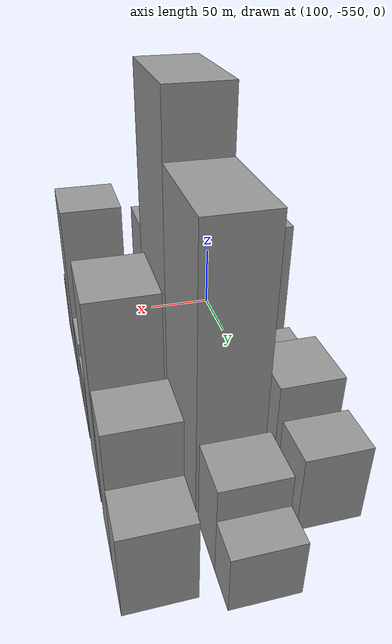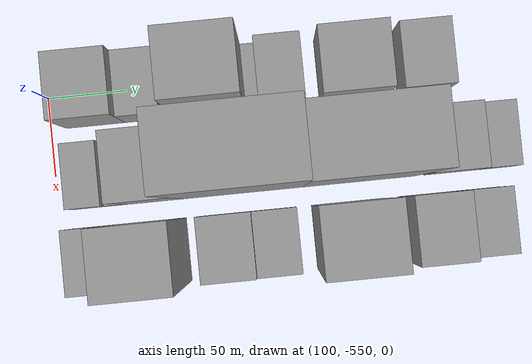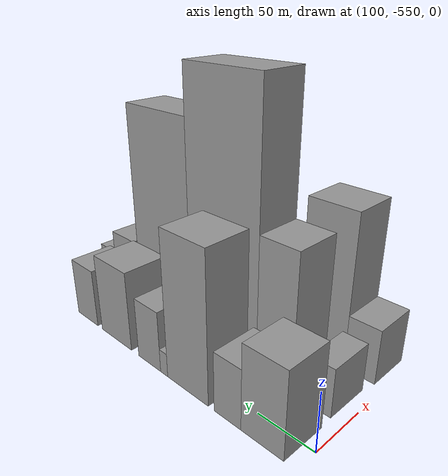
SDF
<sdf version="1.6">
 <world name="default">
  <model name="building_1">
   <static>1</static>
   <pose>100.0000 -521.2292 0 0.000000 0.000000 0.000000</pose>
   <link name="link">
    <pose>0 0 36.00 0 0 0</pose>
    <collision name="collision"><geometry><box><size>40.0000 37.5416 72.0000</size></box></geometry></collision>
    <visual name="visual">
     <cast_shadows>0</cast_shadows>
     <geometry><box><size>40.0000 37.5416 72.0000</size></box></geometry>
     <material>
      <script>
       <uri>model://grey_wall/materials/scripts</uri>
       <uri>model://grey_wall/materials/textures</uri>
       <name>vrc/grey_wall</name>
      </script>
     </material>
    </visual>
   </link>
  </model>
  <model name="building_2">
   <static>1</static>
   <pose>100.0000 -489.3952 0 0.000000 0.000000 0.000000</pose>
   <link name="link">
    <pose>0 0 25.50 0 0 0</pose>
    <collision name="collision"><geometry><box><size>40.0000 26.1263 51.0000</size></box></geometry></collision>
    <visual name="visual">
     <cast_shadows>0</cast_shadows>
     <geometry><box><size>40.0000 26.1263 51.0000</size></box></geometry>
     <material>
      <script>
       <uri>model://grey_wall/materials/scripts</uri>
       <uri>model://grey_wall/materials/textures</uri>
       <name>vrc/grey_wall</name>
      </script>
     </material>
    </visual>
   </link>
  </model>
  <model name="building_3">
   <static>1</static>
   <pose>100.0000 -447.6443 0 0.000000 0.000000 0.000000</pose>
   <link name="link">
    <pose>0 0 63.00 0 0 0</pose>
    <collision name="collision"><geometry><box><size>40.0000 45.3757 126.0000</size></box></geometry></collision>
    <visual name="visual">
     <cast_shadows>0</cast_shadows>
     <geometry><box><size>40.0000 45.3757 126.0000</size></box></geometry>
     <material>
      <script>
       <uri>model://grey_wall/materials/scripts</uri>
       <uri>model://grey_wall/materials/textures</uri>
       <name>vrc/grey_wall</name>
      </script>
     </material>
    </visual>
   </link>
  </model>
  <model name="building_4">
   <static>1</static>
   <pose>100.0000 -420.6477 0 0.000000 0.000000 0.000000</pose>
   <link name="link">
    <pose>0 0 10.50 0 0 0</pose>
    <collision name="collision"><geometry><box><size>40.0000 8.6174 21.0000</size></box></geometry></collision>
    <visual name="visual">
     <cast_shadows>0</cast_shadows>
     <geometry><box><size>40.0000 8.6174 21.0000</size></box></geometry>
     <material>
      <script>
       <uri>model://grey_wall/materials/scripts</uri>
       <uri>model://grey_wall/materials/textures</uri>
       <name>vrc/grey_wall</name>
      </script>
     </material>
    </visual>
   </link>
  </model>
  <model name="building_5">
   <static>1</static>
   <pose>100.0000 -402.2791 0 0.000000 0.000000 0.000000</pose>
   <link name="link">
    <pose>0 0 27.00 0 0 0</pose>
    <collision name="collision"><geometry><box><size>40.0000 28.1198 54.0000</size></box></geometry></collision>
    <visual name="visual">
     <cast_shadows>0</cast_shadows>
     <geometry><box><size>40.0000 28.1198 54.0000</size></box></geometry>
     <material>
      <script>
       <uri>model://grey_wall/materials/scripts</uri>
       <uri>model://grey_wall/materials/textures</uri>
       <name>vrc/grey_wall</name>
      </script>
     </material>
    </visual>
   </link>
  </model>
  <model name="building_6">
   <static>1</static>
   <pose>100.0000 -356.8882 0 0.000000 0.000000 0.000000</pose>
   <link name="link">
    <pose>0 0 36.00 0 0 0</pose>
    <collision name="collision"><geometry><box><size>40.0000 42.6621 72.0000</size></box></geometry></collision>
    <visual name="visual">
     <cast_shadows>0</cast_shadows>
     <geometry><box><size>40.0000 42.6621 72.0000</size></box></geometry>
     <material>
      <script>
       <uri>model://grey_wall/materials/scripts</uri>
       <uri>model://grey_wall/materials/textures</uri>
       <name>vrc/grey_wall</name>
      </script>
     </material>
    </visual>
   </link>
  </model>
  <model name="building_7">
   <static>1</static>
   <pose>100.0000 -312.8669 0 0.000000 0.000000 0.000000</pose>
   <link name="link">
    <pose>0 0 27.00 0 0 0</pose>
    <collision name="collision"><geometry><box><size>40.0000 31.3804 54.0000</size></box></geometry></collision>
    <visual name="visual">
     <cast_shadows>0</cast_shadows>
     <geometry><box><size>40.0000 31.3804 54.0000</size></box></geometry>
     <material>
      <script>
       <uri>model://grey_wall/materials/scripts</uri>
       <uri>model://grey_wall/materials/textures</uri>
       <name>vrc/grey_wall</name>
      </script>
     </material>
    </visual>
   </link>
  </model>
  <model name="building_31">
   <static>1</static>
   <pose>152.0000 -528.1778 0 0.000000 0.000000 0.000000</pose>
   <link name="link">
    <pose>0 0 21.00 0 0 0</pose>
    <collision name="collision"><geometry><box><size>40.0000 21.6443 42.0000</size></box></geometry></collision>
    <visual name="visual">
     <cast_shadows>0</cast_shadows>
     <geometry><box><size>40.0000 21.6443 42.0000</size></box></geometry>
     <material>
      <script>
       <uri>model://grey_wall/materials/scripts</uri>
       <uri>model://grey_wall/materials/textures</uri>
       <name>vrc/grey_wall</name>
      </script>
     </material>
    </visual>
   </link>
  </model>
  <model name="building_32">
   <static>1</static>
   <pose>152.0000 -510.8541 0 0.000000 0.000000 0.000000</pose>
   <link name="link">
    <pose>0 0 13.50 0 0 0</pose>
    <collision name="collision"><geometry><box><size>40.0000 13.0031 27.0000</size></box></geometry></collision>
    <visual name="visual">
     <cast_shadows>0</cast_shadows>
     <geometry><box><size>40.0000 13.0031 27.0000</size></box></geometry>
     <material>
      <script>
       <uri>model://grey_wall/materials/scripts</uri>
       <uri>model://grey_wall/materials/textures</uri>
       <name>vrc/grey_wall</name>
      </script>
     </material>
    </visual>
   </link>
  </model>
  <model name="building_33">
   <static>1</static>
   <pose>152.0000 -486.6505 0 0.000000 0.000000 0.000000</pose>
   <link name="link">
    <pose>0 0 58.50 0 0 0</pose>
    <collision name="collision"><geometry><box><size>40.0000 35.4040 117.0000</size></box></geometry></collision>
    <visual name="visual">
     <cast_shadows>0</cast_shadows>
     <geometry><box><size>40.0000 35.4040 117.0000</size></box></geometry>
     <material>
      <script>
       <uri>model://grey_wall/materials/scripts</uri>
       <uri>model://grey_wall/materials/textures</uri>
       <name>vrc/grey_wall</name>
      </script>
     </material>
    </visual>
   </link>
  </model>
  <model name="building_34">
   <static>1</static>
   <pose>152.0000 -431.5255 0 0.000000 0.000000 0.000000</pose>
   <link name="link">
    <pose>0 0 112.50 0 0 0</pose>
    <collision name="collision"><geometry><box><size>40.0000 74.8459 225.0000</size></box></geometry></collision>
    <visual name="visual">
     <cast_shadows>0</cast_shadows>
     <geometry><box><size>40.0000 74.8459 225.0000</size></box></geometry>
     <material>
      <script>
       <uri>model://grey_wall/materials/scripts</uri>
       <uri>model://grey_wall/materials/textures</uri>
       <name>vrc/grey_wall</name>
      </script>
     </material>
    </visual>
   </link>
  </model>
  <model name="building_35">
   <static>1</static>
   <pose>152.0000 -358.5160 0 0.000000 0.000000 0.000000</pose>
   <link name="link">
    <pose>0 0 93.00 0 0 0</pose>
    <collision name="collision"><geometry><box><size>40.0000 71.1732 186.0000</size></box></geometry></collision>
    <visual name="visual">
     <cast_shadows>0</cast_shadows>
     <geometry><box><size>40.0000 71.1732 186.0000</size></box></geometry>
     <material>
      <script>
       <uri>model://grey_wall/materials/scripts</uri>
       <uri>model://grey_wall/materials/textures</uri>
       <name>vrc/grey_wall</name>
      </script>
     </material>
    </visual>
   </link>
  </model>
  <model name="building_36">
   <static>1</static>
   <pose>152.0000 -300.5440 0 0.000000 0.000000 0.000000</pose>
   <link name="link">
    <pose>0 0 30.00 0 0 0</pose>
    <collision name="collision"><geometry><box><size>40.0000 32.7709 60.0000</size></box></geometry></collision>
    <visual name="visual">
     <cast_shadows>0</cast_shadows>
     <geometry><box><size>40.0000 32.7709 60.0000</size></box></geometry>
     <material>
      <script>
       <uri>model://grey_wall/materials/scripts</uri>
       <uri>model://grey_wall/materials/textures</uri>
       <name>vrc/grey_wall</name>
      </script>
     </material>
    </visual>
   </link>
  </model>
  <model name="building_37">
   <static>1</static>
   <pose>152.0000 -272.6185 0 0.000000 0.000000 0.000000</pose>
   <link name="link">
    <pose>0 0 19.50 0 0 0</pose>
    <collision name="collision"><geometry><box><size>40.0000 23.0800 39.0000</size></box></geometry></collision>
    <visual name="visual">
     <cast_shadows>0</cast_shadows>
     <geometry><box><size>40.0000 23.0800 39.0000</size></box></geometry>
     <material>
      <script>
       <uri>model://grey_wall/materials/scripts</uri>
       <uri>model://grey_wall/materials/textures</uri>
       <name>vrc/grey_wall</name>
      </script>
     </material>
    </visual>
   </link>
  </model>
  <model name="building_59">
   <static>1</static>
   <pose>204.0000 -528.1693 0 0.000000 0.000000 0.000000</pose>
   <link name="link">
    <pose>0 0 24.00 0 0 0</pose>
    <collision name="collision"><geometry><box><size>40.0000 27.6614 48.0000</size></box></geometry></collision>
    <visual name="visual">
     <cast_shadows>0</cast_shadows>
     <geometry><box><size>40.0000 27.6614 48.0000</size></box></geometry>
     <material>
      <script>
       <uri>model://grey_wall/materials/scripts</uri>
       <uri>model://grey_wall/materials/textures</uri>
       <name>vrc/grey_wall</name>
      </script>
     </material>
    </visual>
   </link>
  </model>
  <model name="building_60">
   <static>1</static>
   <pose>204.0000 -492.0183 0 0.000000 0.000000 0.000000</pose>
   <link name="link">
    <pose>0 0 66.00 0 0 0</pose>
    <collision name="collision"><geometry><box><size>40.0000 44.6406 132.0000</size></box></geometry></collision>
    <visual name="visual">
     <cast_shadows>0</cast_shadows>
     <geometry><box><size>40.0000 44.6406 132.0000</size></box></geometry>
     <material>
      <script>
       <uri>model://grey_wall/materials/scripts</uri>
       <uri>model://grey_wall/materials/textures</uri>
       <name>vrc/grey_wall</name>
      </script>
     </material>
    </visual>
   </link>
  </model>
  <model name="building_61">
   <static>1</static>
   <pose>204.0000 -444.0405 0 0.000000 0.000000 0.000000</pose>
   <link name="link">
    <pose>0 0 28.50 0 0 0</pose>
    <collision name="collision"><geometry><box><size>40.0000 33.3150 57.0000</size></box></geometry></collision>
    <visual name="visual">
     <cast_shadows>0</cast_shadows>
     <geometry><box><size>40.0000 33.3150 57.0000</size></box></geometry>
     <material>
      <script>
       <uri>model://grey_wall/materials/scripts</uri>
       <uri>model://grey_wall/materials/textures</uri>
       <name>vrc/grey_wall</name>
      </script>
     </material>
    </visual>
   </link>
  </model>
  <model name="building_62">
   <static>1</static>
   <pose>204.0000 -413.6468 0 0.000000 0.000000 0.000000</pose>
   <link name="link">
    <pose>0 0 24.00 0 0 0</pose>
    <collision name="collision"><geometry><box><size>40.0000 27.4723 48.0000</size></box></geometry></collision>
    <visual name="visual">
     <cast_shadows>0</cast_shadows>
     <geometry><box><size>40.0000 27.4723 48.0000</size></box></geometry>
     <material>
      <script>
       <uri>model://grey_wall/materials/scripts</uri>
       <uri>model://grey_wall/materials/textures</uri>
       <name>vrc/grey_wall</name>
      </script>
     </material>
    </visual>
   </link>
  </model>
  <model name="building_63">
   <static>1</static>
   <pose>204.0000 -367.2348 0 0.000000 0.000000 0.000000</pose>
   <link name="link">
    <pose>0 0 69.00 0 0 0</pose>
    <collision name="collision"><geometry><box><size>40.0000 45.3516 138.0000</size></box></geometry></collision>
    <visual name="visual">
     <cast_shadows>0</cast_shadows>
     <geometry><box><size>40.0000 45.3516 138.0000</size></box></geometry>
     <material>
      <script>
       <uri>model://grey_wall/materials/scripts</uri>
       <uri>model://grey_wall/materials/textures</uri>
       <name>vrc/grey_wall</name>
      </script>
     </material>
    </visual>
   </link>
  </model>
  <model name="building_64">
   <static>1</static>
   <pose>204.0000 -318.1275 0 0.000000 0.000000 0.000000</pose>
   <link name="link">
    <pose>0 0 46.50 0 0 0</pose>
    <collision name="collision"><geometry><box><size>40.0000 32.8631 93.0000</size></box></geometry></collision>
    <visual name="visual">
     <cast_shadows>0</cast_shadows>
     <geometry><box><size>40.0000 32.8631 93.0000</size></box></geometry>
     <material>
      <script>
       <uri>model://grey_wall/materials/scripts</uri>
       <uri>model://grey_wall/materials/textures</uri>
       <name>vrc/grey_wall</name>
      </script>
     </material>
    </visual>
   </link>
  </model>
  <model name="building_65">
   <static>1</static>
   <pose>204.0000 -286.6837 0 0.000000 0.000000 0.000000</pose>
   <link name="link">
    <pose>0 0 28.50 0 0 0</pose>
    <collision name="collision"><geometry><box><size>40.0000 30.0245 57.0000</size></box></geometry></collision>
    <visual name="visual">
     <cast_shadows>0</cast_shadows>
     <geometry><box><size>40.0000 30.0245 57.0000</size></box></geometry>
     <material>
      <script>
       <uri>model://grey_wall/materials/scripts</uri>
       <uri>model://grey_wall/materials/textures</uri>
       <name>vrc/grey_wall</name>
      </script>
     </material>
    </visual>
   </link>
  </model>
 </world>
</sdf>
